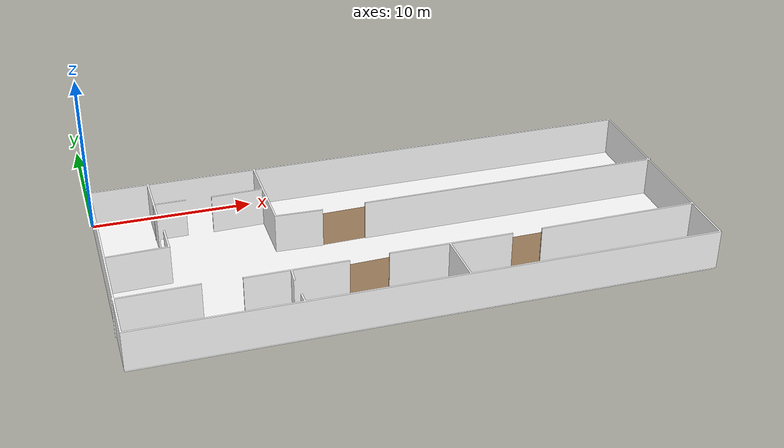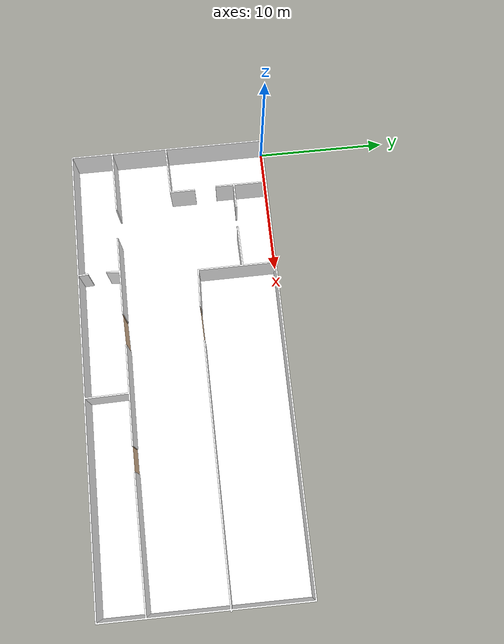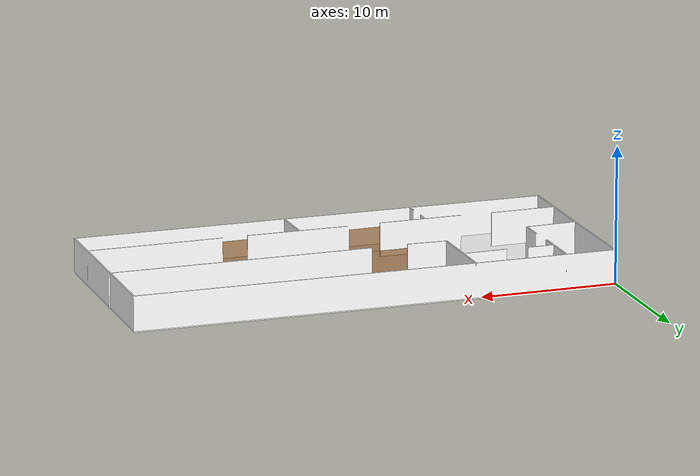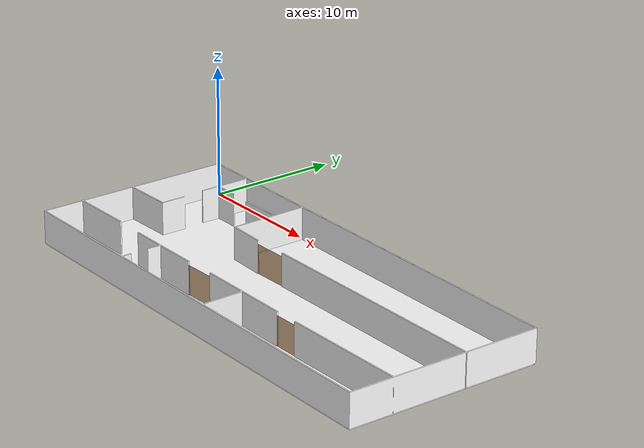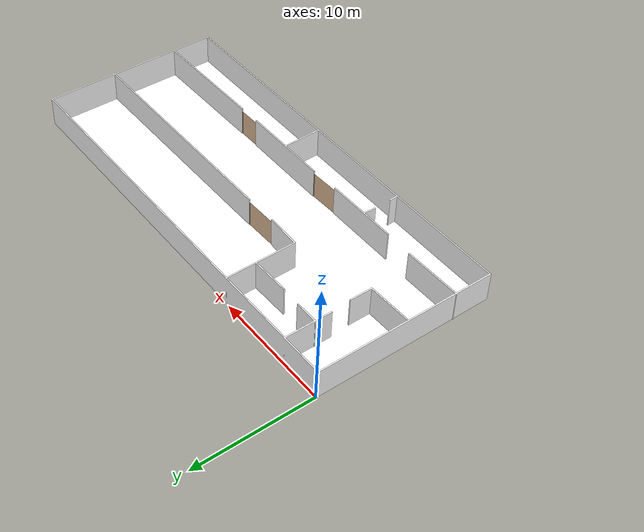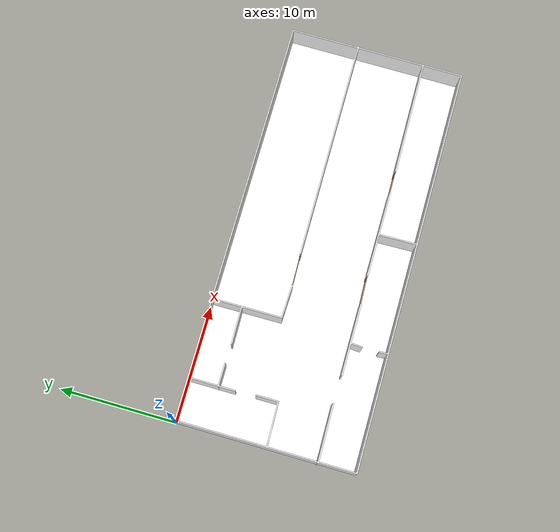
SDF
<sdf version="1.7">
 <world name="sim_world">
  <physics name="10ms" type="ode">
   <max_step_size>0.01</max_step_size>
   <real_time_factor>1.0</real_time_factor>
  </physics>
  <plugin filename="libgz-sim-physics-system.so" name="gz::sim::systems::Physics"/>
  <plugin filename="libgz-sim-user-commands-system.so" name="gz::sim::systems::UserCommands"/>
  <plugin filename="libgz-sim-scene-broadcaster-system.so" name="gz::sim::systems::SceneBroadcaster"/>
  <plugin filename="libgz-sim-sensors-system.so" name="gz::sim::systems::Sensors">
   <render_engine>ogre</render_engine>
  </plugin>
  <plugin filename="libdoor.so" name="door"/>
  <plugin filename="liblift.so" name="lift"/>
  <scene><ambient>1 1 1</ambient><background>0.8 0.8 0.8</background><grid>false</grid></scene>
  <light type="directional" name="sun">
   <pose>0 0 10 0 0 0</pose>
   <diffuse>1 1 1 1</diffuse>
   <specular>0.2 0.2 0.2 1</specular>
   <attenuation>
    <range>1000</range>
    <constant>0.09</constant>
    <linear>0.001</linear>
    <quadratic>0.001</quadratic>
   </attenuation>
   <direction>-0.5 0.1 -0.9</direction>
  </light>
  <model name="door_1">
   <pose>14.622211534248372 -6.079523073485881 0.0 0 0 -3.1177789123416084</pose>
   <link name="right">
    <pose>0 0 1.11 0 0 0</pose>
    <visual name="right_visual">
     <geometry><box><size>2.7633990262152155 0.03 2.2</size></box></geometry>
     <material>
      <ambient>0.5 0.25 0 0.6</ambient>
      <diffuse>0.5 0.25 0 0.6</diffuse>
      <pbr><metal><metalness>0.0</metalness></metal></pbr>
     </material>
    </visual>
    <collision name="right_collision">
     <geometry><box><size>2.7633990262152155 0.03 2.2</size></box></geometry>
     <surface><contact><collide_bitmask>0x02</collide_bitmask></contact></surface>
    </collision>
    <inertial>
     <mass>50.0</mass>
     <inertia><ixx>20.17041666666667</ixx><iyy>51.98489240869668</iyy><izz>31.821975742030006</izz></inertia>
    </inertial>
   </link>
   <joint name="right_joint" type="revolute">
    <parent>world</parent>
    <child>right</child>
    <axis><xyz>0 0 1</xyz><limit><lower>0</lower><upper>1.57</upper></limit></axis>
    <pose>1.3866995131076076 0 0 0 0 0</pose>
   </joint>
   <plugin name="register_component" filename="libregister_component.so">
    <component name="Door">
     <v_max_door>0.5</v_max_door>
     <a_max_door>0.3</a_max_door>
     <a_nom_door>0.15</a_nom_door>
     <dx_min_door>0.01</dx_min_door>
     <f_max_door>500.0</f_max_door>
     <ros_interface>true</ros_interface>
     <door name="door_1" type="SwingDoor" left_joint_name="empty_joint" right_joint_name="right_joint"/>
    </component>
   </plugin>
  </model>
  <model name="door_3">
   <pose>14.512928933745279 -11.907601624635106 0.0 0 0 -3.105978903412989</pose>
   <link name="right">
    <pose>0 0 1.11 0 0 0</pose>
    <visual name="right_visual">
     <geometry><box><size>2.464240950666936 0.03 2.2</size></box></geometry>
     <material>
      <ambient>0.5 0.25 0 0.6</ambient>
      <diffuse>0.5 0.25 0 0.6</diffuse>
      <pbr><metal><metalness>0.0</metalness></metal></pbr>
     </material>
    </visual>
    <collision name="right_collision">
     <geometry><box><size>2.464240950666936 0.03 2.2</size></box></geometry>
     <surface><contact><collide_bitmask>0x02</collide_bitmask></contact></surface>
    </collision>
    <inertial>
     <mass>50.0</mass>
     <inertia><ixx>20.17041666666667</ixx><iyy>45.46868109559953</iyy><izz>25.305764428932854</izz></inertia>
    </inertial>
   </link>
   <joint name="right_joint" type="prismatic">
    <parent>world</parent>
    <child>right</child>
    <axis>
     <xyz>1 0 0</xyz>
     <limit><lower>0.0</lower><upper>2.474240950666936</upper><effort>500.0</effort></limit>
    </axis>
   </joint>
   <plugin name="register_component" filename="libregister_component.so">
    <component name="Door">
     <v_max_door>0.2</v_max_door>
     <a_max_door>0.2</a_max_door>
     <a_nom_door>0.08</a_nom_door>
     <dx_min_door>0.001</dx_min_door>
     <f_max_door>100.0</f_max_door>
     <ros_interface>true</ros_interface>
     <door name="door_3" type="SlidingDoor" left_joint_name="empty_joint" right_joint_name="right_joint"/>
    </component>
   </plugin>
  </model>
  <model name="door_2">
   <pose>24.174109579022435 -11.867666730090479 0.0 0 0 -3.1294667164611094</pose>
   <link name="right">
    <pose>0 0 1.11 0 0 0</pose>
    <visual name="right_visual">
     <geometry><box><size>1.94497519737032 0.03 2.2</size></box></geometry>
     <material>
      <ambient>0.5 0.25 0 0.6</ambient>
      <diffuse>0.5 0.25 0 0.6</diffuse>
      <pbr><metal><metalness>0.0</metalness></metal></pbr>
     </material>
    </visual>
    <collision name="right_collision">
     <geometry><box><size>1.94497519737032 0.03 2.2</size></box></geometry>
     <surface><contact><collide_bitmask>0x02</collide_bitmask></contact></surface>
    </collision>
    <inertial>
     <mass>50.0</mass>
     <inertia><ixx>20.17041666666667</ixx><iyy>35.92886882660716</iyy><izz>15.765952159940483</izz></inertia>
    </inertial>
   </link>
   <joint name="right_joint" type="prismatic">
    <parent>world</parent>
    <child>right</child>
    <axis>
     <xyz>1 0 0</xyz>
     <limit><lower>0.0</lower><upper>1.95497519737032</upper><effort>500.0</effort></limit>
    </axis>
   </joint>
   <plugin name="register_component" filename="libregister_component.so">
    <component name="Door">
     <v_max_door>0.2</v_max_door>
     <a_max_door>0.2</a_max_door>
     <a_nom_door>0.08</a_nom_door>
     <dx_min_door>0.001</dx_min_door>
     <f_max_door>100.0</f_max_door>
     <ros_interface>true</ros_interface>
     <door name="door_2" type="SlidingDoor" left_joint_name="empty_joint" right_joint_name="right_joint"/>
    </component>
   </plugin>
  </model>
  <include><name>my_world_L1</name><uri>model://my_world_L1</uri></include>
  <rmf_charger_waypoints name="charger_waypoints">
   <rmf_vertex name="turtlebot2_charger" x="32.74087102531709" y="-2.604714542205718" level="L1"/>
   <rmf_vertex name="turtlebot1_charger" x="32.35839943118211" y="-14.000218110974842" level="L1"/>
   <rmf_vertex name="tinyRobot1_charger" x="1.735215812409885" y="-1.8073472308771619" level="L1"/>
  </rmf_charger_waypoints>
 </world>
</sdf>

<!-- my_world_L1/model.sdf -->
<sdf version="1.7">
  <model name="my_world_L1">
    <static>true</static>
    <link name="floor_1">
      <visual name="visual">
        <geometry>
          <mesh>
            <uri>model://my_world_L1/meshes/floor_1.obj</uri>
          </mesh>
        </geometry>
        <material>
          <diffuse>1.0 1.0 1.0</diffuse>
          <specular>0.1 0.1 0.1</specular>
          <pbr>
            <metal>
              <metalness>0.0</metalness>
              <albedo_map>model://my_world_L1/meshes/blue_linoleum.png</albedo_map>
            </metal>
          </pbr>
          <script>
            <uri>model://my_world_L1/meshes/</uri>
            <name>floor_1_Diffuse</name>
          </script>
        </material>
      </visual>
      <collision name="collision">
        <geometry>
          <mesh>
            <uri>model://my_world_L1/meshes/floor_1.obj</uri>
          </mesh>
        </geometry>
        <surface>
          <contact>
            <collide_bitmask>0x01</collide_bitmask>
          </contact>
        </surface>
      </collision>
    </link>
    <link name="floor_2">
      <visual name="visual">
        <geometry>
          <mesh>
            <uri>model://my_world_L1/meshes/floor_2.obj</uri>
          </mesh>
        </geometry>
        <material>
          <diffuse>1.0 1.0 1.0</diffuse>
          <specular>0.1 0.1 0.1</specular>
          <pbr>
            <metal>
              <metalness>0.0</metalness>
              <albedo_map>model://my_world_L1/meshes/blue_linoleum.png</albedo_map>
            </metal>
          </pbr>
          <script>
            <uri>model://my_world_L1/meshes/</uri>
            <name>floor_2_Diffuse</name>
          </script>
        </material>
      </visual>
      <collision name="collision">
        <geometry>
          <mesh>
            <uri>model://my_world_L1/meshes/floor_2.obj</uri>
          </mesh>
        </geometry>
        <surface>
          <contact>
            <collide_bitmask>0x01</collide_bitmask>
          </contact>
        </surface>
      </collision>
    </link>
    <link name="wall_1">
      <visual name="wall_1">
        <geometry>
          <mesh>
            <uri>model://my_world_L1/meshes/wall_1.obj</uri>
          </mesh>
        </geometry>
        <transparency>0.0</transparency>
        <material>
          <diffuse>1.0 1.0 1.0</diffuse>
          <specular>0.1 0.1 0.1</specular>
          <pbr>
            <metal>
              <metalness>0.0</metalness>
              <albedo_map>model://my_world_L1/meshes/default.png</albedo_map>
            </metal>
          </pbr>
          <script>
            <uri>model://my_world_L1/meshes/</uri>
            <name>wall_1_Diffuse</name>
          </script>
        </material>
      </visual>
      <collision name="collision">
        <geometry>
          <mesh>
            <uri>model://my_world_L1/meshes/wall_1.obj</uri>
          </mesh>
        </geometry>
        <surface>
          <contact>
            <collide_bitmask>0x01</collide_bitmask>
          </contact>
        </surface>
      </collision>
      <pose>-0.08369485550906486 -15.20674566278495 0 0 0 0</pose>
    </link>
  </model>
</sdf>
